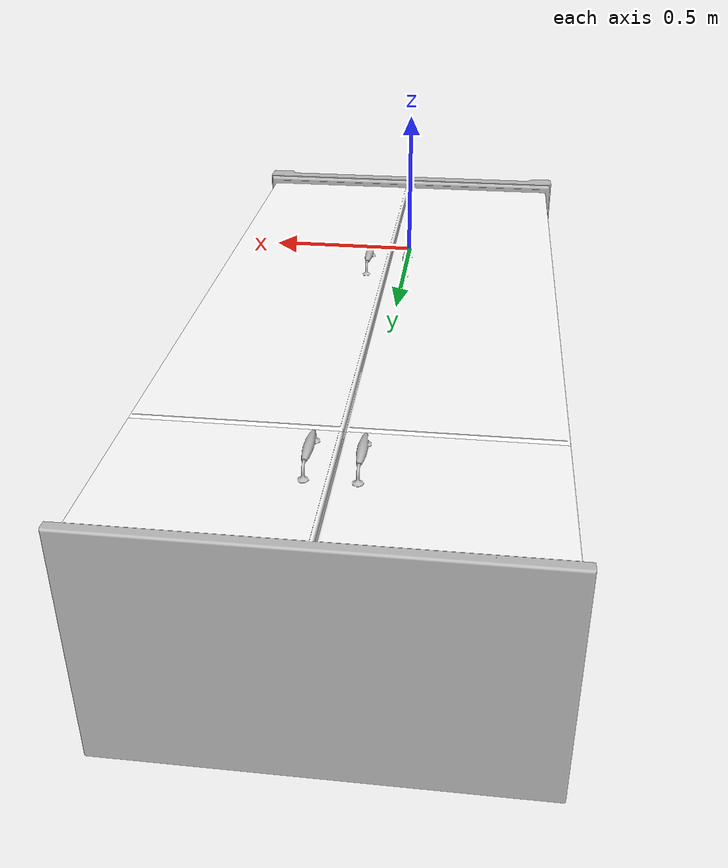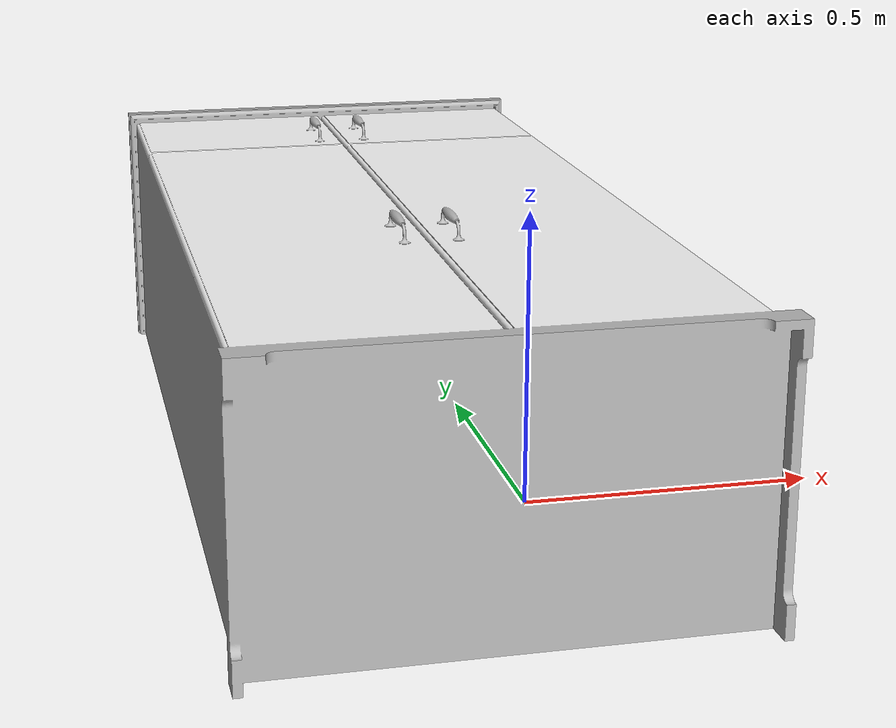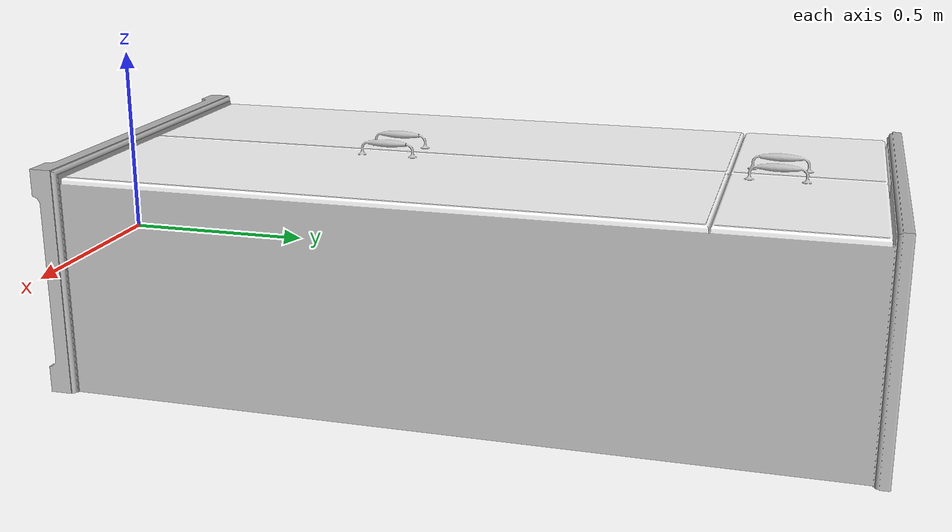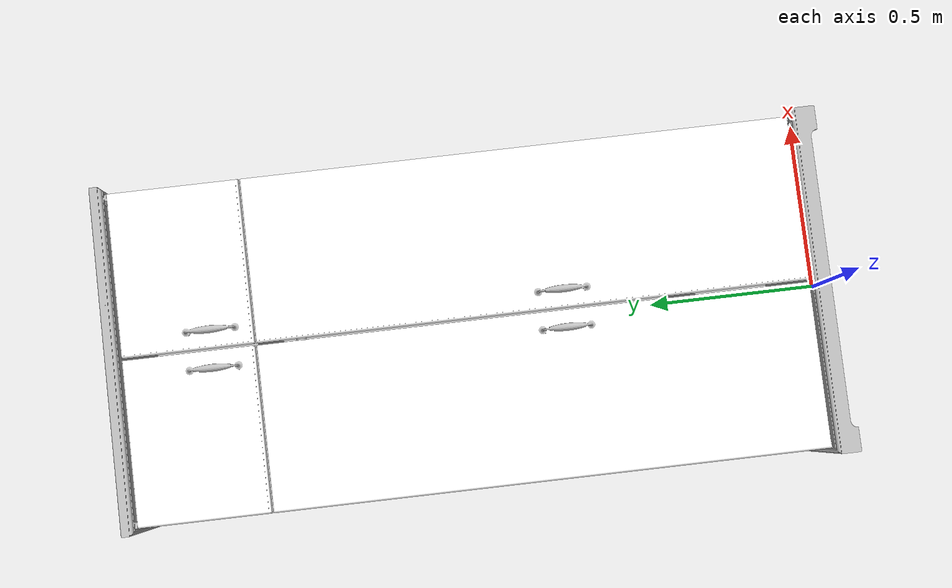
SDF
<sdf version='1.6'>
  <model name='wardrobe'>
    <link name='base_link'>
      <pose frame=''>0 0 0 0 -0 0</pose>
      <inertial>
        <pose frame=''>0 0 0 0 -0 0</pose>
        <mass>20</mass>
        <inertia>
          <ixx>1</ixx>
          <ixy>0</ixy>
          <ixz>0</ixz>
          <iyy>1</iyy>
          <iyz>0</iyz>
          <izz>1</izz>
        </inertia>
      </inertial>
      <visual name='base_link_collision'>
        <pose frame=''>0 0 0 0 -0 0</pose>
        <geometry>
          <mesh>
            <scale>1 1 1</scale>
            <uri>file://isr-testbed/wardrobe/3d-model.dae</uri>
          </mesh>
        </geometry>
      </visual>
      <collision name='base_link_visual'>
        <pose frame=''>0 1.1 0 0 -0 0</pose>
        <geometry>
          <box>
            <size>1 2 0.72</size>
          </box>
        </geometry>
      </collision>
    </link>
    <static>1</static>
  </model>
</sdf>
